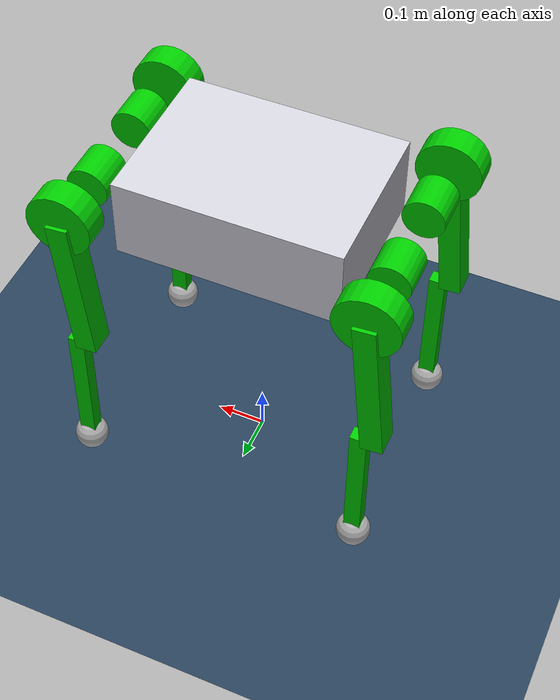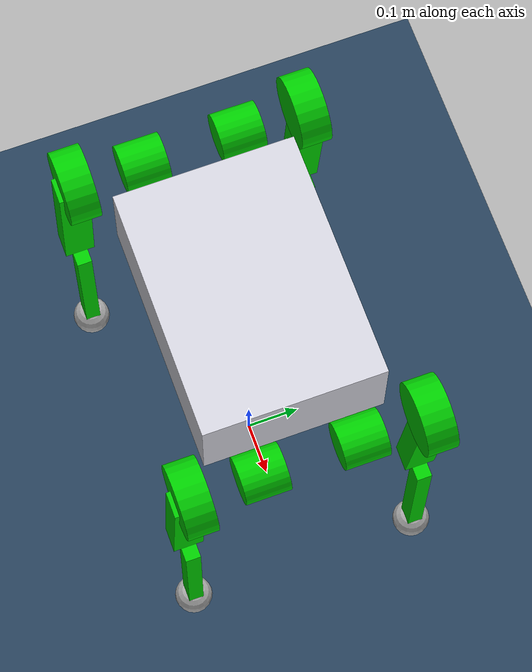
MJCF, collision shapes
<?xml version="1.0" encoding="utf-8"?>
<mujoco model="dolanga1">
  <compiler angle="radian" meshdir="meshes/dolanga1" autolimits="true" eulerseq="xyz"/>

  <option timestep="0.005" gravity="0 0 -9.81"/>

  <asset>
    <texture type="skybox" builtin="gradient" rgb1="0.4 0.6 0.8" rgb2="0 0 0" width="512" height="512"/>
    <texture name="grid" type="2d" builtin="checker" width="512" height="512" rgb1=".1 .2 .3" rgb2=".2 .3 .4"/>
    <material name="grid" texture="grid" texrepeat="10 10" reflectance="0.1"/>

    <!-- base_link.STL ~783k faces exceeds MuJoCo mesh limit (~200k); use box visual matching URDF collision. -->
    <mesh name="LF_hip_link" file="LF_hip_link.STL"/>
    <mesh name="LF_thigh_link" file="LF_thigh_link.STL"/>
    <mesh name="LF_calf_link" file="LF_calf_link.STL"/>
    <mesh name="RF_hip_link" file="RF_hip_link.STL"/>
    <mesh name="RF_thigh_link" file="RF_thigh_link.STL"/>
    <mesh name="RF_calf_link" file="RF_calf_link.STL"/>
    <mesh name="LH_hip_link" file="LH_hip_link.STL"/>
    <mesh name="LH_thigh_link" file="LH_thigh_link.STL"/>
    <mesh name="LH_calf_link" file="LH_calf_link.STL"/>
    <mesh name="RH_hip_link" file="RH_hip_link.STL"/>
    <mesh name="RH_thigh_link" file="RH_thigh_link.STL"/>
    <mesh name="RH_calf_link" file="RH_calf_link.STL"/>
  </asset>

  <default>
    <default class="viz">
      <geom type="mesh" contype="0" conaffinity="0" group="2"/>
    </default>
    <default class="col">
      <geom group="3" rgba="0 0.8 0 0.35"/>
    </default>
    <joint damping="0.05" armature="0.01"/>
  </default>

  <worldbody>
    <geom name="floor" type="plane" size="20 20 0.05" material="grid" friction="1 0.005 0.0001"/>
    <light directional="true" diffuse="0.8 0.8 0.8" pos="0 0 6" dir="0 0 -1"/>

    <!-- Initial height ~ standing; tune after mesh loads -->
    <body name="base_link" pos="0 0 0.7">
      <freejoint name="root"/>
      <inertial pos="-0.0002293 0.011892 -0.009708" mass="16.726"
                fullinertia="0.21656 0.50598 0.64318 -0.001263 -0.000286 -0.000295"/>
      <geom type="box" size="0.225 0.163 0.084" pos="0 0 -0.015" contype="0" conaffinity="0" group="2" rgba="0.82 0.82 0.86 1"/>
      <geom class="col" type="box" size="0.225 0.163 0.084" pos="0 0 -0.015"/>

      <!-- LF leg -->
      <body name="LF_hip_link" pos="0.298 0.0875 0">
        <joint name="LF_hip_joint" type="hinge" axis="1 0 0" limited="true" range="-0.78 0.78"/>
        <inertial pos="-0.012381 0.0015851 0" mass="1.4744"
                  fullinertia="0.001354 0.002287 0.002177 -3.3e-05 -2e-06 -4e-06"/>
        <geom class="viz" mesh="LF_hip_link"/>
        <geom class="col" type="cylinder" size="0.042 0.04" euler="1.5707963267948966 0 0"/>

        <body name="LF_thigh_link" pos="0 0.131 0">
          <joint name="LF_thigh_joint" type="hinge" axis="0 1 0" limited="true" range="-2.31 2.22"/>
          <inertial pos="-0.008151 -0.035895 -0.045087" mass="2.8226"
                    fullinertia="0.028969 0.027026 0.006705 -0.000644 0.002168 -0.004637"/>
          <geom class="viz" mesh="LF_thigh_link"/>
          <geom class="col" type="box" size="0.16 0.0275 0.0225" pos="-0.015 0 -0.16" euler="0 1.6707963267948966 0"/>
          <geom class="col" type="cylinder" size="0.066 0.0275" pos="0 -0.008 0" euler="1.5707963267948966 0 0"/>

          <body name="LF_calf_link" pos="0 0 -0.32">
            <joint name="LF_calf_joint" type="hinge" axis="0 1 0" limited="true" range="-2.82 -0.8"/>
            <inertial pos="0.013306 -0.00011048 -0.18849" mass="0.85029"
                      fullinertia="0.014443 0.014721 0.000487 1e-06 -0.000163 -1.9e-05"/>
            <geom class="viz" mesh="LF_calf_link"/>
            <geom class="col" type="box" size="0.155 0.014 0.017" pos="0 0 -0.155" euler="0 1.5707963267948966 0"/>

            <body name="LF_foot_link" pos="0 0 -0.31">
              <inertial pos="-0.007615 0 -0.0082552" mass="0.11851"
                        fullinertia="4e-05 4.9e-05 4.1e-05 -1.9367e-11 -9e-06 -2.9471e-10"/>
              <geom class="col" type="sphere" size="0.035" rgba="0.7 0.7 0.7 1"/>
            </body>
          </body>
        </body>
      </body>

      <!-- RF leg -->
      <body name="RF_hip_link" pos="0.298 -0.0875 0">
        <joint name="RF_hip_joint" type="hinge" axis="1 0 0" limited="true" range="-0.78 0.78"/>
        <inertial pos="-0.012381 -0.0015851 0" mass="1.4744"
                  fullinertia="0.001354 0.002287 0.002177 3.3e-05 2e-06 -4e-06"/>
        <geom class="viz" mesh="RF_hip_link"/>
        <geom class="col" type="cylinder" size="0.042 0.04" euler="1.5707963267948966 0 0"/>

        <body name="RF_thigh_link" pos="0 -0.131 0">
          <joint name="RF_thigh_joint" type="hinge" axis="0 1 0" limited="true" range="-2.31 2.22"/>
          <inertial pos="-0.0081543 0.035895 -0.045163" mass="2.8226"
                    fullinertia="0.028948 0.027005 0.006705 0.000644 0.002172 0.004636"/>
          <geom class="viz" mesh="RF_thigh_link"/>
          <geom class="col" type="box" size="0.16 0.0275 0.0225" pos="-0.015 0 -0.16" euler="0 1.6707963267948966 0"/>
          <geom class="col" type="cylinder" size="0.066 0.0275" pos="0 0.008 0" euler="1.5707963267948966 0 0"/>

          <body name="RF_calf_link" pos="0 0 -0.32">
            <joint name="RF_calf_joint" type="hinge" axis="0 1 0" limited="true" range="-2.82 -0.8"/>
            <inertial pos="0.013306 -0.00011048 -0.18849" mass="0.85029"
                      fullinertia="0.014443 0.014721 0.000487 1e-06 -0.000163 -1.9e-05"/>
            <geom class="viz" mesh="RF_calf_link"/>
            <geom class="col" type="box" size="0.155 0.014 0.017" pos="0 0 -0.155" euler="0 1.5707963267948966 0"/>

            <body name="RF_foot_link" pos="0 0 -0.31">
              <inertial pos="-0.007615 0 -0.0082552" mass="0.11851"
                        fullinertia="4e-05 4.9e-05 4.1e-05 -1.9367e-11 -9e-06 -2.9471e-10"/>
              <geom class="col" type="sphere" size="0.035" rgba="0.7 0.7 0.7 1"/>
            </body>
          </body>
        </body>
      </body>

      <!-- LH leg -->
      <body name="LH_hip_link" pos="-0.298 0.0875 0">
        <joint name="LH_hip_joint" type="hinge" axis="1 0 0" limited="true" range="-0.78 0.78"/>
        <inertial pos="0.012381 0.0015851 0" mass="1.4744"
                  fullinertia="0.001354 0.002287 0.002177 3.3e-05 -2e-06 4e-06"/>
        <geom class="viz" mesh="LH_hip_link"/>
        <geom class="col" type="cylinder" size="0.042 0.04" euler="1.5707963267948966 0 0"/>

        <body name="LH_thigh_link" pos="0 0.131 0">
          <joint name="LH_thigh_joint" type="hinge" axis="0 1 0" limited="true" range="-2.31 2.22"/>
          <inertial pos="-0.008151 -0.035895 -0.045087" mass="2.8226"
                    fullinertia="0.028969 0.027026 0.006705 -0.000644 0.002168 -0.004637"/>
          <geom class="viz" mesh="LH_thigh_link"/>
          <geom class="col" type="box" size="0.16 0.0275 0.0225" pos="-0.015 0 -0.16" euler="0 1.6707963267948966 0"/>
          <geom class="col" type="cylinder" size="0.066 0.0275" pos="0 -0.008 0" euler="1.5707963267948966 0 0"/>

          <body name="LH_calf_link" pos="0 0 -0.32">
            <joint name="LH_calf_joint" type="hinge" axis="0 1 0" limited="true" range="-2.82 -0.8"/>
            <inertial pos="0.013306 -0.00011048 -0.18849" mass="0.85029"
                      fullinertia="0.014443 0.014721 0.000487 1e-06 -0.000163 -1.9e-05"/>
            <geom class="viz" mesh="LH_calf_link"/>
            <geom class="col" type="box" size="0.155 0.014 0.017" pos="0 0 -0.155" euler="0 1.5707963267948966 0"/>

            <body name="LH_foot_link" pos="0 0 -0.31">
              <inertial pos="-0.007615 0 -0.0082552" mass="0.11851"
                        fullinertia="4e-05 4.9e-05 4.1e-05 -1.9367e-11 -9e-06 -2.9471e-10"/>
              <geom class="col" type="sphere" size="0.035" rgba="0.7 0.7 0.7 1"/>
            </body>
          </body>
        </body>
      </body>

      <!-- RH leg -->
      <body name="RH_hip_link" pos="-0.298 -0.0875 0">
        <joint name="RH_hip_joint" type="hinge" axis="1 0 0" limited="true" range="-0.78 0.78"/>
        <inertial pos="0.012381 -0.0015851 0" mass="1.4744"
                  fullinertia="0.001354 0.002287 0.002177 -3.3e-05 2e-06 4e-06"/>
        <geom class="viz" mesh="RH_hip_link"/>
        <geom class="col" type="cylinder" size="0.042 0.04" euler="1.5707963267948966 0 0"/>

        <body name="RH_thigh_link" pos="0 -0.131 0">
          <joint name="RH_thigh_joint" type="hinge" axis="0 1 0" limited="true" range="-2.31 2.22"/>
          <inertial pos="-0.0081543 0.035895 -0.045163" mass="2.8226"
                    fullinertia="0.028948 0.027005 0.006705 0.000644 0.002172 0.004636"/>
          <geom class="viz" mesh="RH_thigh_link"/>
          <geom class="col" type="box" size="0.16 0.0275 0.0225" pos="-0.015 0 -0.16" euler="0 1.6707963267948966 0"/>
          <geom class="col" type="cylinder" size="0.066 0.0275" pos="0 0.008 0" euler="1.5707963267948966 0 0"/>

          <body name="RH_calf_link" pos="0 0 -0.32">
            <joint name="RH_calf_joint" type="hinge" axis="0 1 0" limited="true" range="-2.82 -0.8"/>
            <inertial pos="0.013288 -0.0001104 -0.18848" mass="0.85029"
                      fullinertia="0.014439 0.014718 0.000488 1e-06 -0.000162 -1.9e-05"/>
            <geom class="viz" mesh="RH_calf_link"/>
            <geom class="col" type="box" size="0.155 0.014 0.017" pos="0 0 -0.155" euler="0 1.5707963267948966 0"/>

            <body name="RH_foot_link" pos="0 0 -0.31">
              <inertial pos="-0.0077457 0 -0.0081327" mass="0.11851"
                        fullinertia="4e-05 4.9e-05 4e-05 2.9154e-10 -9e-06 3.4437e-11"/>
              <geom class="col" type="sphere" size="0.035" rgba="0.7 0.7 0.7 1"/>
            </body>
          </body>
        </body>
      </body>
    </body>
  </worldbody>

  <!-- Torque interface for sim2sim: ctrl[i] -> joint i torque -->
  <actuator>
    <motor name="m_LF_hip" joint="LF_hip_joint" gear="1" ctrllimited="false"/>
    <motor name="m_LF_thigh" joint="LF_thigh_joint" gear="1" ctrllimited="false"/>
    <motor name="m_LF_calf" joint="LF_calf_joint" gear="1" ctrllimited="false"/>
    <motor name="m_RF_hip" joint="RF_hip_joint" gear="1" ctrllimited="false"/>
    <motor name="m_RF_thigh" joint="RF_thigh_joint" gear="1" ctrllimited="false"/>
    <motor name="m_RF_calf" joint="RF_calf_joint" gear="1" ctrllimited="false"/>
    <motor name="m_LH_hip" joint="LH_hip_joint" gear="1" ctrllimited="false"/>
    <motor name="m_LH_thigh" joint="LH_thigh_joint" gear="1" ctrllimited="false"/>
    <motor name="m_LH_calf" joint="LH_calf_joint" gear="1" ctrllimited="false"/>
    <motor name="m_RH_hip" joint="RH_hip_joint" gear="1" ctrllimited="false"/>
    <motor name="m_RH_thigh" joint="RH_thigh_joint" gear="1" ctrllimited="false"/>
    <motor name="m_RH_calf" joint="RH_calf_joint" gear="1" ctrllimited="false"/>
  </actuator>
</mujoco>
